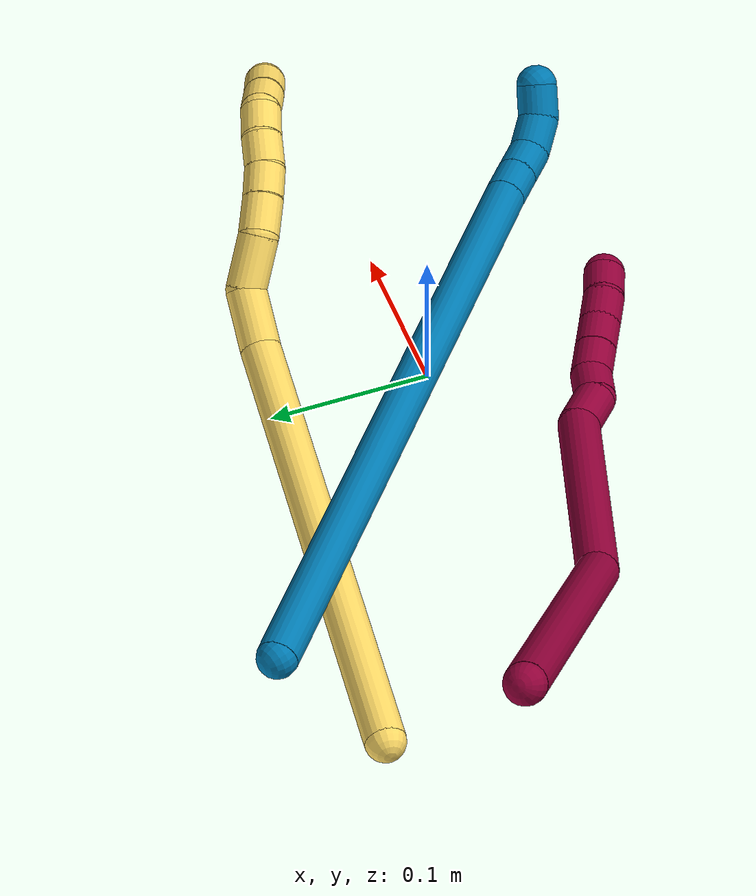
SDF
<sdf version="1.7">
 <world name="default">
  <model name="5">
   <static>0</static>
   <link name="5">
    <collision name="collision-cylinder-e_1_1_4">
     <pose>0.0027 0.001136 -0.150952 -3.13407 0.017885 -2.345</pose>
     <geometry><cylinder><radius>0.0125</radius><length>0.30196</length></cylinder></geometry>
     <surface>
      <friction><ode><mu>1.16</mu><mu2>1.16</mu2><slip1>0</slip1><slip2>0</slip2></ode></friction>
      <contact><ode><kp>1e+06</kp><kd>1</kd><max_vel>0</max_vel><min_depth>0.001</min_depth></ode></contact>
     </surface>
    </collision>
    <visual name="visual-cylinder-e_1_1_4">
     <pose>0.0027 0.001136 -0.150952 -3.13407 0.017885 -2.345</pose>
     <geometry><cylinder><radius>0.0125</radius><length>0.30196</length></cylinder></geometry>
     <material><ambient>1 0.858824 0.4 1</ambient></material>
    </visual>
    <collision name="collision-cylinder-e_2_4_5">
     <pose>0.010654 0.010143 -0.318204 -2.69177 0.282495 -1.1122</pose>
     <geometry><cylinder><radius>0.0125</radius><length>0.037698</length></cylinder></geometry>
     <surface>
      <friction><ode><mu>1.16</mu><mu2>1.16</mu2><slip1>0</slip1><slip2>0</slip2></ode></friction>
      <contact><ode><kp>1e+06</kp><kd>1</kd><max_vel>0</max_vel><min_depth>0.001</min_depth></ode></contact>
     </surface>
    </collision>
    <visual name="visual-cylinder-e_2_4_5">
     <pose>0.010654 0.010143 -0.318204 -2.69177 0.282495 -1.1122</pose>
     <geometry><cylinder><radius>0.0125</radius><length>0.037698</length></cylinder></geometry>
     <material><ambient>1 0.858824 0.4 1</ambient></material>
    </visual>
    <collision name="collision-cylinder-e_3_5_6">
     <pose>0.027768 0.022753 -0.345401 -2.73129 0.784464 -2.20948</pose>
     <geometry><cylinder><radius>0.0125</radius><length>0.033575</length></cylinder></geometry>
     <surface>
      <friction><ode><mu>1.16</mu><mu2>1.16</mu2><slip1>0</slip1><slip2>0</slip2></ode></friction>
      <contact><ode><kp>1e+06</kp><kd>1</kd><max_vel>0</max_vel><min_depth>0.001</min_depth></ode></contact>
     </surface>
    </collision>
    <visual name="visual-cylinder-e_3_5_6">
     <pose>0.027768 0.022753 -0.345401 -2.73129 0.784464 -2.20948</pose>
     <geometry><cylinder><radius>0.0125</radius><length>0.033575</length></cylinder></geometry>
     <material><ambient>1 0.858824 0.4 1</ambient></material>
    </visual>
    <collision name="collision-cylinder-e_4_6_7">
     <pose>0.045502 0.028598 -0.366805 -3.03676 0.507371 -2.74229</pose>
     <geometry><cylinder><radius>0.0125</radius><length>0.02418</length></cylinder></geometry>
     <surface>
      <friction><ode><mu>1.16</mu><mu2>1.16</mu2><slip1>0</slip1><slip2>0</slip2></ode></friction>
      <contact><ode><kp>1e+06</kp><kd>1</kd><max_vel>0</max_vel><min_depth>0.001</min_depth></ode></contact>
     </surface>
    </collision>
    <visual name="visual-cylinder-e_4_6_7">
     <pose>0.045502 0.028598 -0.366805 -3.03676 0.507371 -2.74229</pose>
     <geometry><cylinder><radius>0.0125</radius><length>0.02418</length></cylinder></geometry>
     <material><ambient>1 0.858824 0.4 1</ambient></material>
    </visual>
    <collision name="collision-cylinder-e_5_7_8">
     <pose>0.055632 0.030532 -0.386374 -3.05041 0.437567 -2.73685</pose>
     <geometry><cylinder><radius>0.0125</radius><length>0.020088</length></cylinder></geometry>
     <surface>
      <friction><ode><mu>1.16</mu><mu2>1.16</mu2><slip1>0</slip1><slip2>0</slip2></ode></friction>
      <contact><ode><kp>1e+06</kp><kd>1</kd><max_vel>0</max_vel><min_depth>0.001</min_depth></ode></contact>
     </surface>
    </collision>
    <visual name="visual-cylinder-e_5_7_8">
     <pose>0.055632 0.030532 -0.386374 -3.05041 0.437567 -2.73685</pose>
     <geometry><cylinder><radius>0.0125</radius><length>0.020088</length></cylinder></geometry>
     <material><ambient>1 0.858824 0.4 1</ambient></material>
    </visual>
    <collision name="collision-cylinder-e_6_8_9">
     <pose>0.062776 0.032728 -0.405404 -3.00528 0.279414 -2.23773</pose>
     <geometry><cylinder><radius>0.0125</radius><length>0.020939</length></cylinder></geometry>
     <surface>
      <friction><ode><mu>1.16</mu><mu2>1.16</mu2><slip1>0</slip1><slip2>0</slip2></ode></friction>
      <contact><ode><kp>1e+06</kp><kd>1</kd><max_vel>0</max_vel><min_depth>0.001</min_depth></ode></contact>
     </surface>
    </collision>
    <visual name="visual-cylinder-e_6_8_9">
     <pose>0.062776 0.032728 -0.405404 -3.00528 0.279414 -2.23773</pose>
     <geometry><cylinder><radius>0.0125</radius><length>0.020939</length></cylinder></geometry>
     <material><ambient>1 0.858824 0.4 1</ambient></material>
    </visual>
    <collision name="collision-cylinder-e_7_9_10">
     <pose>0.068234 0.03381 -0.425208 3.1125 0.255594 2.91613</pose>
     <geometry><cylinder><radius>0.0125</radius><length>0.020337</length></cylinder></geometry>
     <surface>
      <friction><ode><mu>1.16</mu><mu2>1.16</mu2><slip1>0</slip1><slip2>0</slip2></ode></friction>
      <contact><ode><kp>1e+06</kp><kd>1</kd><max_vel>0</max_vel><min_depth>0.001</min_depth></ode></contact>
     </surface>
    </collision>
    <visual name="visual-cylinder-e_7_9_10">
     <pose>0.068234 0.03381 -0.425208 3.1125 0.255594 2.91613</pose>
     <geometry><cylinder><radius>0.0125</radius><length>0.020337</length></cylinder></geometry>
     <material><ambient>1 0.858824 0.4 1</ambient></material>
    </visual>
    <collision name="collision-cylinder-e_8_10_11">
     <pose>0.07135 0.028796 -0.444165 2.66349 0.053074 0.21697</pose>
     <geometry><cylinder><radius>0.0125</radius><length>0.020579</length></cylinder></geometry>
     <surface>
      <friction><ode><mu>1.16</mu><mu2>1.16</mu2><slip1>0</slip1><slip2>0</slip2></ode></friction>
      <contact><ode><kp>1e+06</kp><kd>1</kd><max_vel>0</max_vel><min_depth>0.001</min_depth></ode></contact>
     </surface>
    </collision>
    <visual name="visual-cylinder-e_8_10_11">
     <pose>0.07135 0.028796 -0.444165 2.66349 0.053074 0.21697</pose>
     <geometry><cylinder><radius>0.0125</radius><length>0.020579</length></cylinder></geometry>
     <material><ambient>1 0.858824 0.4 1</ambient></material>
    </visual>
    <collision name="collision-cylinder-e_9_11_2">
     <pose>0.071501 0.019051 -0.4623 2.63355 -0.038289 -0.147226</pose>
     <geometry><cylinder><radius>0.0125</radius><length>0.020644</length></cylinder></geometry>
     <surface>
      <friction><ode><mu>1.16</mu><mu2>1.16</mu2><slip1>0</slip1><slip2>0</slip2></ode></friction>
      <contact><ode><kp>1e+06</kp><kd>1</kd><max_vel>0</max_vel><min_depth>0.001</min_depth></ode></contact>
     </surface>
    </collision>
    <visual name="visual-cylinder-e_9_11_2">
     <pose>0.071501 0.019051 -0.4623 2.63355 -0.038289 -0.147226</pose>
     <geometry><cylinder><radius>0.0125</radius><length>0.020644</length></cylinder></geometry>
     <material><ambient>1 0.858824 0.4 1</ambient></material>
    </visual>
    <collision name="collision-sphere-2">
     <pose>0.071106 0.014033 -0.471312 0 -0 0</pose>
     <geometry><sphere><radius>0.0125</radius></sphere></geometry>
     <surface>
      <friction><ode><mu>1.16</mu><mu2>1.16</mu2><slip1>0</slip1><slip2>0</slip2></ode></friction>
      <contact><ode><kp>1e+06</kp><kd>1</kd><max_vel>0</max_vel><min_depth>0.001</min_depth></ode></contact>
     </surface>
    </collision>
    <visual name="visual-sphere-2">
     <pose>0.071106 0.014033 -0.471312 0 -0 0</pose>
     <geometry><sphere><radius>0.0125</radius></sphere></geometry>
     <material><ambient>1 0.858824 0.4 1</ambient></material>
    </visual>
    <collision name="collision-sphere-11">
     <pose>0.071896 0.024068 -0.453288 0 -0 0</pose>
     <geometry><sphere><radius>0.0125</radius></sphere></geometry>
     <surface>
      <friction><ode><mu>1.16</mu><mu2>1.16</mu2><slip1>0</slip1><slip2>0</slip2></ode></friction>
      <contact><ode><kp>1e+06</kp><kd>1</kd><max_vel>0</max_vel><min_depth>0.001</min_depth></ode></contact>
     </surface>
    </collision>
    <visual name="visual-sphere-11">
     <pose>0.071896 0.024068 -0.453288 0 -0 0</pose>
     <geometry><sphere><radius>0.0125</radius></sphere></geometry>
     <material><ambient>1 0.858824 0.4 1</ambient></material>
    </visual>
    <collision name="collision-sphere-10">
     <pose>0.070804 0.033523 -0.435042 0 -0 0</pose>
     <geometry><sphere><radius>0.0125</radius></sphere></geometry>
     <surface>
      <friction><ode><mu>1.16</mu><mu2>1.16</mu2><slip1>0</slip1><slip2>0</slip2></ode></friction>
      <contact><ode><kp>1e+06</kp><kd>1</kd><max_vel>0</max_vel><min_depth>0.001</min_depth></ode></contact>
     </surface>
    </collision>
    <visual name="visual-sphere-10">
     <pose>0.070804 0.033523 -0.435042 0 -0 0</pose>
     <geometry><sphere><radius>0.0125</radius></sphere></geometry>
     <material><ambient>1 0.858824 0.4 1</ambient></material>
    </visual>
    <collision name="collision-sphere-9">
     <pose>0.065663 0.034096 -0.415374 0 -0 0</pose>
     <geometry><sphere><radius>0.0125</radius></sphere></geometry>
     <surface>
      <friction><ode><mu>1.16</mu><mu2>1.16</mu2><slip1>0</slip1><slip2>0</slip2></ode></friction>
      <contact><ode><kp>1e+06</kp><kd>1</kd><max_vel>0</max_vel><min_depth>0.001</min_depth></ode></contact>
     </surface>
    </collision>
    <visual name="visual-sphere-9">
     <pose>0.065663 0.034096 -0.415374 0 -0 0</pose>
     <geometry><sphere><radius>0.0125</radius></sphere></geometry>
     <material><ambient>1 0.858824 0.4 1</ambient></material>
    </visual>
    <collision name="collision-sphere-4">
     <pose>0.0054 0.002272 -0.301903 0 -0 0</pose>
     <geometry><sphere><radius>0.0125</radius></sphere></geometry>
     <surface>
      <friction><ode><mu>1.16</mu><mu2>1.16</mu2><slip1>0</slip1><slip2>0</slip2></ode></friction>
      <contact><ode><kp>1e+06</kp><kd>1</kd><max_vel>0</max_vel><min_depth>0.001</min_depth></ode></contact>
     </surface>
    </collision>
    <visual name="visual-sphere-4">
     <pose>0.0054 0.002272 -0.301903 0 -0 0</pose>
     <geometry><sphere><radius>0.0125</radius></sphere></geometry>
     <material><ambient>1 0.858824 0.4 1</ambient></material>
    </visual>
    <collision name="collision-sphere-1">
     <geometry><sphere><radius>0.0125</radius></sphere></geometry>
     <surface>
      <friction><ode><mu>1.16</mu><mu2>1.16</mu2><slip1>0</slip1><slip2>0</slip2></ode></friction>
      <contact><ode><kp>1e+06</kp><kd>1</kd><max_vel>0</max_vel><min_depth>0.001</min_depth></ode></contact>
     </surface>
    </collision>
    <visual name="visual-sphere-1">
     <geometry><sphere><radius>0.0125</radius></sphere></geometry>
     <material><ambient>1 0.858824 0.4 1</ambient></material>
    </visual>
    <collision name="collision-sphere-8">
     <pose>0.059888 0.031361 -0.395434 0 -0 0</pose>
     <geometry><sphere><radius>0.0125</radius></sphere></geometry>
     <surface>
      <friction><ode><mu>1.16</mu><mu2>1.16</mu2><slip1>0</slip1><slip2>0</slip2></ode></friction>
      <contact><ode><kp>1e+06</kp><kd>1</kd><max_vel>0</max_vel><min_depth>0.001</min_depth></ode></contact>
     </surface>
    </collision>
    <visual name="visual-sphere-8">
     <pose>0.059888 0.031361 -0.395434 0 -0 0</pose>
     <geometry><sphere><radius>0.0125</radius></sphere></geometry>
     <material><ambient>1 0.858824 0.4 1</ambient></material>
    </visual>
    <collision name="collision-sphere-5">
     <pose>0.015909 0.018014 -0.334505 0 -0 0</pose>
     <geometry><sphere><radius>0.0125</radius></sphere></geometry>
     <surface>
      <friction><ode><mu>1.16</mu><mu2>1.16</mu2><slip1>0</slip1><slip2>0</slip2></ode></friction>
      <contact><ode><kp>1e+06</kp><kd>1</kd><max_vel>0</max_vel><min_depth>0.001</min_depth></ode></contact>
     </surface>
    </collision>
    <visual name="visual-sphere-5">
     <pose>0.015909 0.018014 -0.334505 0 -0 0</pose>
     <geometry><sphere><radius>0.0125</radius></sphere></geometry>
     <material><ambient>1 0.858824 0.4 1</ambient></material>
    </visual>
    <collision name="collision-sphere-6">
     <pose>0.039627 0.027493 -0.356296 0 -0 0</pose>
     <geometry><sphere><radius>0.0125</radius></sphere></geometry>
     <surface>
      <friction><ode><mu>1.16</mu><mu2>1.16</mu2><slip1>0</slip1><slip2>0</slip2></ode></friction>
      <contact><ode><kp>1e+06</kp><kd>1</kd><max_vel>0</max_vel><min_depth>0.001</min_depth></ode></contact>
     </surface>
    </collision>
    <visual name="visual-sphere-6">
     <pose>0.039627 0.027493 -0.356296 0 -0 0</pose>
     <geometry><sphere><radius>0.0125</radius></sphere></geometry>
     <material><ambient>1 0.858824 0.4 1</ambient></material>
    </visual>
    <collision name="collision-sphere-7">
     <pose>0.051376 0.029704 -0.377314 0 -0 0</pose>
     <geometry><sphere><radius>0.0125</radius></sphere></geometry>
     <surface>
      <friction><ode><mu>1.16</mu><mu2>1.16</mu2><slip1>0</slip1><slip2>0</slip2></ode></friction>
      <contact><ode><kp>1e+06</kp><kd>1</kd><max_vel>0</max_vel><min_depth>0.001</min_depth></ode></contact>
     </surface>
    </collision>
    <visual name="visual-sphere-7">
     <pose>0.051376 0.029704 -0.377314 0 -0 0</pose>
     <geometry><sphere><radius>0.0125</radius></sphere></geometry>
     <material><ambient>1 0.858824 0.4 1</ambient></material>
    </visual>
    <inertial>
     <pose>0.020027 0.010306 -0.24325 0 -0 0</pose>
     <mass>0.5</mass>
     <inertia>
      <ixx>-0.003266</ixx>
      <ixy>0</ixy>
      <ixz>0</ixz>
      <iyy>-4e-05</iyy>
      <iyz>0</iyz>
      <izz>-0.000105</izz>
     </inertia>
    </inertial>
   </link>
   <pose>-0.264649 0.122049 0.012442 1.59107 -0.627749 -1.66665</pose>
  </model>
  <model name="8">
   <static>0</static>
   <link name="8">
    <collision name="collision-cylinder-e_1_1_4">
     <pose>0.022105 -0.000349 -0.108624 3.13838 0.200755 3.10973</pose>
     <geometry><cylinder><radius>0.0125</radius><length>0.221702</length></cylinder></geometry>
     <surface>
      <friction><ode><mu>1.16</mu><mu2>1.16</mu2><slip1>0</slip1><slip2>0</slip2></ode></friction>
      <contact><ode><kp>1e+06</kp><kd>1</kd><max_vel>0</max_vel><min_depth>0.001</min_depth></ode></contact>
     </surface>
    </collision>
    <visual name="visual-cylinder-e_1_1_4">
     <pose>0.022105 -0.000349 -0.108624 3.13838 0.200755 3.10973</pose>
     <geometry><cylinder><radius>0.0125</radius><length>0.221702</length></cylinder></geometry>
     <material><ambient>0.584314 0 0.227451 1</ambient></material>
    </visual>
    <collision name="collision-cylinder-e_2_4_5">
     <pose>0.087657 -0.00302 -0.279063 3.10403 0.612318 3.02289</pose>
     <geometry><cylinder><radius>0.0125</radius><length>0.151183</length></cylinder></geometry>
     <surface>
      <friction><ode><mu>1.16</mu><mu2>1.16</mu2><slip1>0</slip1><slip2>0</slip2></ode></friction>
      <contact><ode><kp>1e+06</kp><kd>1</kd><max_vel>0</max_vel><min_depth>0.001</min_depth></ode></contact>
     </surface>
    </collision>
    <visual name="visual-cylinder-e_2_4_5">
     <pose>0.087657 -0.00302 -0.279063 3.10403 0.612318 3.02289</pose>
     <geometry><cylinder><radius>0.0125</radius><length>0.151183</length></cylinder></geometry>
     <material><ambient>0.584314 0 0.227451 1</ambient></material>
    </visual>
    <collision name="collision-cylinder-e_3_5_6">
     <pose>0.135718 -0.010979 -0.35204 2.67404 0.353446 1.28694</pose>
     <geometry><cylinder><radius>0.0125</radius><length>0.026659</length></cylinder></geometry>
     <surface>
      <friction><ode><mu>1.16</mu><mu2>1.16</mu2><slip1>0</slip1><slip2>0</slip2></ode></friction>
      <contact><ode><kp>1e+06</kp><kd>1</kd><max_vel>0</max_vel><min_depth>0.001</min_depth></ode></contact>
     </surface>
    </collision>
    <visual name="visual-cylinder-e_3_5_6">
     <pose>0.135718 -0.010979 -0.35204 2.67404 0.353446 1.28694</pose>
     <geometry><cylinder><radius>0.0125</radius><length>0.026659</length></cylinder></geometry>
     <material><ambient>0.584314 0 0.227451 1</ambient></material>
    </visual>
    <collision name="collision-cylinder-e_4_6_7">
     <pose>0.147223 -0.017546 -0.37053 3.01526 0.750793 2.82331</pose>
     <geometry><cylinder><radius>0.0125</radius><length>0.020202</length></cylinder></geometry>
     <surface>
      <friction><ode><mu>1.16</mu><mu2>1.16</mu2><slip1>0</slip1><slip2>0</slip2></ode></friction>
      <contact><ode><kp>1e+06</kp><kd>1</kd><max_vel>0</max_vel><min_depth>0.001</min_depth></ode></contact>
     </surface>
    </collision>
    <visual name="visual-cylinder-e_4_6_7">
     <pose>0.147223 -0.017546 -0.37053 3.01526 0.750793 2.82331</pose>
     <geometry><cylinder><radius>0.0125</radius><length>0.020202</length></cylinder></geometry>
     <material><ambient>0.584314 0 0.227451 1</ambient></material>
    </visual>
    <collision name="collision-cylinder-e_5_7_8">
     <pose>0.160392 -0.022324 -0.384801 2.63567 0.669124 1.8628</pose>
     <geometry><cylinder><radius>0.0125</radius><length>0.020242</length></cylinder></geometry>
     <surface>
      <friction><ode><mu>1.16</mu><mu2>1.16</mu2><slip1>0</slip1><slip2>0</slip2></ode></friction>
      <contact><ode><kp>1e+06</kp><kd>1</kd><max_vel>0</max_vel><min_depth>0.001</min_depth></ode></contact>
     </surface>
    </collision>
    <visual name="visual-cylinder-e_5_7_8">
     <pose>0.160392 -0.022324 -0.384801 2.63567 0.669124 1.8628</pose>
     <geometry><cylinder><radius>0.0125</radius><length>0.020242</length></cylinder></geometry>
     <material><ambient>0.584314 0 0.227451 1</ambient></material>
    </visual>
    <collision name="collision-cylinder-e_6_8_9">
     <pose>0.172718 -0.029783 -0.398848 2.67116 0.649184 1.90386</pose>
     <geometry><cylinder><radius>0.0125</radius><length>0.020009</length></cylinder></geometry>
     <surface>
      <friction><ode><mu>1.16</mu><mu2>1.16</mu2><slip1>0</slip1><slip2>0</slip2></ode></friction>
      <contact><ode><kp>1e+06</kp><kd>1</kd><max_vel>0</max_vel><min_depth>0.001</min_depth></ode></contact>
     </surface>
    </collision>
    <visual name="visual-cylinder-e_6_8_9">
     <pose>0.172718 -0.029783 -0.398848 2.67116 0.649184 1.90386</pose>
     <geometry><cylinder><radius>0.0125</radius><length>0.020009</length></cylinder></geometry>
     <material><ambient>0.584314 0 0.227451 1</ambient></material>
    </visual>
    <collision name="collision-cylinder-e_7_9_10">
     <pose>0.185186 -0.037529 -0.41241 2.5722 0.69702 1.78551</pose>
     <geometry><cylinder><radius>0.0125</radius><length>0.020001</length></cylinder></geometry>
     <surface>
      <friction><ode><mu>1.16</mu><mu2>1.16</mu2><slip1>0</slip1><slip2>0</slip2></ode></friction>
      <contact><ode><kp>1e+06</kp><kd>1</kd><max_vel>0</max_vel><min_depth>0.001</min_depth></ode></contact>
     </surface>
    </collision>
    <visual name="visual-cylinder-e_7_9_10">
     <pose>0.185186 -0.037529 -0.41241 2.5722 0.69702 1.78551</pose>
     <geometry><cylinder><radius>0.0125</radius><length>0.020001</length></cylinder></geometry>
     <material><ambient>0.584314 0 0.227451 1</ambient></material>
    </visual>
    <collision name="collision-cylinder-e_8_10_2">
     <pose>0.197998 -0.043962 -0.426208 2.83815 0.693438 2.34096</pose>
     <geometry><cylinder><radius>0.0125</radius><length>0.020002</length></cylinder></geometry>
     <surface>
      <friction><ode><mu>1.16</mu><mu2>1.16</mu2><slip1>0</slip1><slip2>0</slip2></ode></friction>
      <contact><ode><kp>1e+06</kp><kd>1</kd><max_vel>0</max_vel><min_depth>0.001</min_depth></ode></contact>
     </surface>
    </collision>
    <visual name="visual-cylinder-e_8_10_2">
     <pose>0.197998 -0.043962 -0.426208 2.83815 0.693438 2.34096</pose>
     <geometry><cylinder><radius>0.0125</radius><length>0.020002</length></cylinder></geometry>
     <material><ambient>0.584314 0 0.227451 1</ambient></material>
    </visual>
    <collision name="collision-sphere-2">
     <pose>0.204391 -0.04626 -0.433548 0 -0 0</pose>
     <geometry><sphere><radius>0.0125</radius></sphere></geometry>
     <surface>
      <friction><ode><mu>1.16</mu><mu2>1.16</mu2><slip1>0</slip1><slip2>0</slip2></ode></friction>
      <contact><ode><kp>1e+06</kp><kd>1</kd><max_vel>0</max_vel><min_depth>0.001</min_depth></ode></contact>
     </surface>
    </collision>
    <visual name="visual-sphere-2">
     <pose>0.204391 -0.04626 -0.433548 0 -0 0</pose>
     <geometry><sphere><radius>0.0125</radius></sphere></geometry>
     <material><ambient>0.584314 0 0.227451 1</ambient></material>
    </visual>
    <collision name="collision-sphere-10">
     <pose>0.191606 -0.041664 -0.418869 0 -0 0</pose>
     <geometry><sphere><radius>0.0125</radius></sphere></geometry>
     <surface>
      <friction><ode><mu>1.16</mu><mu2>1.16</mu2><slip1>0</slip1><slip2>0</slip2></ode></friction>
      <contact><ode><kp>1e+06</kp><kd>1</kd><max_vel>0</max_vel><min_depth>0.001</min_depth></ode></contact>
     </surface>
    </collision>
    <visual name="visual-sphere-10">
     <pose>0.191606 -0.041664 -0.418869 0 -0 0</pose>
     <geometry><sphere><radius>0.0125</radius></sphere></geometry>
     <material><ambient>0.584314 0 0.227451 1</ambient></material>
    </visual>
    <collision name="collision-sphere-9">
     <pose>0.178766 -0.033395 -0.405952 0 -0 0</pose>
     <geometry><sphere><radius>0.0125</radius></sphere></geometry>
     <surface>
      <friction><ode><mu>1.16</mu><mu2>1.16</mu2><slip1>0</slip1><slip2>0</slip2></ode></friction>
      <contact><ode><kp>1e+06</kp><kd>1</kd><max_vel>0</max_vel><min_depth>0.001</min_depth></ode></contact>
     </surface>
    </collision>
    <visual name="visual-sphere-9">
     <pose>0.178766 -0.033395 -0.405952 0 -0 0</pose>
     <geometry><sphere><radius>0.0125</radius></sphere></geometry>
     <material><ambient>0.584314 0 0.227451 1</ambient></material>
    </visual>
    <collision name="collision-sphere-4">
     <pose>0.04421 -0.000697 -0.217248 0 -0 0</pose>
     <geometry><sphere><radius>0.0125</radius></sphere></geometry>
     <surface>
      <friction><ode><mu>1.16</mu><mu2>1.16</mu2><slip1>0</slip1><slip2>0</slip2></ode></friction>
      <contact><ode><kp>1e+06</kp><kd>1</kd><max_vel>0</max_vel><min_depth>0.001</min_depth></ode></contact>
     </surface>
    </collision>
    <visual name="visual-sphere-4">
     <pose>0.04421 -0.000697 -0.217248 0 -0 0</pose>
     <geometry><sphere><radius>0.0125</radius></sphere></geometry>
     <material><ambient>0.584314 0 0.227451 1</ambient></material>
    </visual>
    <collision name="collision-sphere-1">
     <geometry><sphere><radius>0.0125</radius></sphere></geometry>
     <surface>
      <friction><ode><mu>1.16</mu><mu2>1.16</mu2><slip1>0</slip1><slip2>0</slip2></ode></friction>
      <contact><ode><kp>1e+06</kp><kd>1</kd><max_vel>0</max_vel><min_depth>0.001</min_depth></ode></contact>
     </surface>
    </collision>
    <visual name="visual-sphere-1">
     <geometry><sphere><radius>0.0125</radius></sphere></geometry>
     <material><ambient>0.584314 0 0.227451 1</ambient></material>
    </visual>
    <collision name="collision-sphere-8">
     <pose>0.16667 -0.026171 -0.391745 0 -0 0</pose>
     <geometry><sphere><radius>0.0125</radius></sphere></geometry>
     <surface>
      <friction><ode><mu>1.16</mu><mu2>1.16</mu2><slip1>0</slip1><slip2>0</slip2></ode></friction>
      <contact><ode><kp>1e+06</kp><kd>1</kd><max_vel>0</max_vel><min_depth>0.001</min_depth></ode></contact>
     </surface>
    </collision>
    <visual name="visual-sphere-8">
     <pose>0.16667 -0.026171 -0.391745 0 -0 0</pose>
     <geometry><sphere><radius>0.0125</radius></sphere></geometry>
     <material><ambient>0.584314 0 0.227451 1</ambient></material>
    </visual>
    <collision name="collision-sphere-5">
     <pose>0.131104 -0.005343 -0.340877 0 -0 0</pose>
     <geometry><sphere><radius>0.0125</radius></sphere></geometry>
     <surface>
      <friction><ode><mu>1.16</mu><mu2>1.16</mu2><slip1>0</slip1><slip2>0</slip2></ode></friction>
      <contact><ode><kp>1e+06</kp><kd>1</kd><max_vel>0</max_vel><min_depth>0.001</min_depth></ode></contact>
     </surface>
    </collision>
    <visual name="visual-sphere-5">
     <pose>0.131104 -0.005343 -0.340877 0 -0 0</pose>
     <geometry><sphere><radius>0.0125</radius></sphere></geometry>
     <material><ambient>0.584314 0 0.227451 1</ambient></material>
    </visual>
    <collision name="collision-sphere-6">
     <pose>0.140332 -0.016616 -0.363204 0 -0 0</pose>
     <geometry><sphere><radius>0.0125</radius></sphere></geometry>
     <surface>
      <friction><ode><mu>1.16</mu><mu2>1.16</mu2><slip1>0</slip1><slip2>0</slip2></ode></friction>
      <contact><ode><kp>1e+06</kp><kd>1</kd><max_vel>0</max_vel><min_depth>0.001</min_depth></ode></contact>
     </surface>
    </collision>
    <visual name="visual-sphere-6">
     <pose>0.140332 -0.016616 -0.363204 0 -0 0</pose>
     <geometry><sphere><radius>0.0125</radius></sphere></geometry>
     <material><ambient>0.584314 0 0.227451 1</ambient></material>
    </visual>
    <collision name="collision-sphere-7">
     <pose>0.154114 -0.018477 -0.377857 0 -0 0</pose>
     <geometry><sphere><radius>0.0125</radius></sphere></geometry>
     <surface>
      <friction><ode><mu>1.16</mu><mu2>1.16</mu2><slip1>0</slip1><slip2>0</slip2></ode></friction>
      <contact><ode><kp>1e+06</kp><kd>1</kd><max_vel>0</max_vel><min_depth>0.001</min_depth></ode></contact>
     </surface>
    </collision>
    <visual name="visual-sphere-7">
     <pose>0.154114 -0.018477 -0.377857 0 -0 0</pose>
     <geometry><sphere><radius>0.0125</radius></sphere></geometry>
     <material><ambient>0.584314 0 0.227451 1</ambient></material>
    </visual>
    <inertial>
     <pose>0.078224 -0.007718 -0.231371 0 -0 0</pose>
     <mass>0.5</mass>
     <inertia>
      <ixx>-0.001059</ixx>
      <ixy>0</ixy>
      <ixz>0</ixz>
      <iyy>0.001274</iyy>
      <iyz>0</iyz>
      <izz>-0.000376</izz>
     </inertia>
    </inertial>
   </link>
   <pose>-0.407004 0.093233 0.221244 -0.762766 -0.444541 0.356821</pose>
  </model>
  <model name="9">
   <static>0</static>
   <link name="9">
    <collision name="collision-cylinder-e_1_1_4">
     <pose>0.092003 -0.054411 0.17722 0.29789 0.460666 0.070346</pose>
     <geometry><cylinder><radius>0.0125</radius><length>0.413918</length></cylinder></geometry>
     <surface>
      <friction><ode><mu>1.16</mu><mu2>1.16</mu2><slip1>0</slip1><slip2>0</slip2></ode></friction>
      <contact><ode><kp>1e+06</kp><kd>1</kd><max_vel>0</max_vel><min_depth>0.001</min_depth></ode></contact>
     </surface>
    </collision>
    <visual name="visual-cylinder-e_1_1_4">
     <pose>0.092003 -0.054411 0.17722 0.29789 0.460666 0.070346</pose>
     <geometry><cylinder><radius>0.0125</radius><length>0.413918</length></cylinder></geometry>
     <material><ambient>0 0.490196 0.709804 1</ambient></material>
    </visual>
    <collision name="collision-cylinder-e_2_4_5">
     <pose>0.188409 -0.11129 0.363665 0.261379 0.43216 0.057687</pose>
     <geometry><cylinder><radius>0.0125</radius><length>0.021031</length></cylinder></geometry>
     <surface>
      <friction><ode><mu>1.16</mu><mu2>1.16</mu2><slip1>0</slip1><slip2>0</slip2></ode></friction>
      <contact><ode><kp>1e+06</kp><kd>1</kd><max_vel>0</max_vel><min_depth>0.001</min_depth></ode></contact>
     </surface>
    </collision>
    <visual name="visual-cylinder-e_2_4_5">
     <pose>0.188409 -0.11129 0.363665 0.261379 0.43216 0.057687</pose>
     <geometry><cylinder><radius>0.0125</radius><length>0.021031</length></cylinder></geometry>
     <material><ambient>0 0.490196 0.709804 1</ambient></material>
    </visual>
    <collision name="collision-cylinder-e_3_5_6">
     <pose>0.197206 -0.115908 0.382293 0.224798 0.427307 0.04897</pose>
     <geometry><cylinder><radius>0.0125</radius><length>0.021199</length></cylinder></geometry>
     <surface>
      <friction><ode><mu>1.16</mu><mu2>1.16</mu2><slip1>0</slip1><slip2>0</slip2></ode></friction>
      <contact><ode><kp>1e+06</kp><kd>1</kd><max_vel>0</max_vel><min_depth>0.001</min_depth></ode></contact>
     </surface>
    </collision>
    <visual name="visual-cylinder-e_3_5_6">
     <pose>0.197206 -0.115908 0.382293 0.224798 0.427307 0.04897</pose>
     <geometry><cylinder><radius>0.0125</radius><length>0.021199</length></cylinder></geometry>
     <material><ambient>0 0.490196 0.709804 1</ambient></material>
    </visual>
    <collision name="collision-cylinder-e_4_6_7">
     <pose>0.208578 -0.116314 0.400852 -0.188286 0.642755 -0.062849</pose>
     <geometry><cylinder><radius>0.0125</radius><length>0.023287</length></cylinder></geometry>
     <surface>
      <friction><ode><mu>1.16</mu><mu2>1.16</mu2><slip1>0</slip1><slip2>0</slip2></ode></friction>
      <contact><ode><kp>1e+06</kp><kd>1</kd><max_vel>0</max_vel><min_depth>0.001</min_depth></ode></contact>
     </surface>
    </collision>
    <visual name="visual-cylinder-e_4_6_7">
     <pose>0.208578 -0.116314 0.400852 -0.188286 0.642755 -0.062849</pose>
     <geometry><cylinder><radius>0.0125</radius><length>0.023287</length></cylinder></geometry>
     <material><ambient>0 0.490196 0.709804 1</ambient></material>
    </visual>
    <collision name="collision-cylinder-e_5_7_2">
     <pose>0.223527 -0.109975 0.414601 -0.78546 0.886924 -0.388587</pose>
     <geometry><cylinder><radius>0.0125</radius><length>0.020565</length></cylinder></geometry>
     <surface>
      <friction><ode><mu>1.16</mu><mu2>1.16</mu2><slip1>0</slip1><slip2>0</slip2></ode></friction>
      <contact><ode><kp>1e+06</kp><kd>1</kd><max_vel>0</max_vel><min_depth>0.001</min_depth></ode></contact>
     </surface>
    </collision>
    <visual name="visual-cylinder-e_5_7_2">
     <pose>0.223527 -0.109975 0.414601 -0.78546 0.886924 -0.388587</pose>
     <geometry><cylinder><radius>0.0125</radius><length>0.020565</length></cylinder></geometry>
     <material><ambient>0 0.490196 0.709804 1</ambient></material>
    </visual>
    <collision name="collision-sphere-2">
     <pose>0.231498 -0.105381 0.419194 0 -0 0</pose>
     <geometry><sphere><radius>0.0125</radius></sphere></geometry>
     <surface>
      <friction><ode><mu>1.16</mu><mu2>1.16</mu2><slip1>0</slip1><slip2>0</slip2></ode></friction>
      <contact><ode><kp>1e+06</kp><kd>1</kd><max_vel>0</max_vel><min_depth>0.001</min_depth></ode></contact>
     </surface>
    </collision>
    <visual name="visual-sphere-2">
     <pose>0.231498 -0.105381 0.419194 0 -0 0</pose>
     <geometry><sphere><radius>0.0125</radius></sphere></geometry>
     <material><ambient>0 0.490196 0.709804 1</ambient></material>
    </visual>
    <collision name="collision-sphere-7">
     <pose>0.215557 -0.114569 0.410007 0 -0 0</pose>
     <geometry><sphere><radius>0.0125</radius></sphere></geometry>
     <surface>
      <friction><ode><mu>1.16</mu><mu2>1.16</mu2><slip1>0</slip1><slip2>0</slip2></ode></friction>
      <contact><ode><kp>1e+06</kp><kd>1</kd><max_vel>0</max_vel><min_depth>0.001</min_depth></ode></contact>
     </surface>
    </collision>
    <visual name="visual-sphere-7">
     <pose>0.215557 -0.114569 0.410007 0 -0 0</pose>
     <geometry><sphere><radius>0.0125</radius></sphere></geometry>
     <material><ambient>0 0.490196 0.709804 1</ambient></material>
    </visual>
    <collision name="collision-sphere-6">
     <pose>0.201599 -0.118058 0.391697 0 -0 0</pose>
     <geometry><sphere><radius>0.0125</radius></sphere></geometry>
     <surface>
      <friction><ode><mu>1.16</mu><mu2>1.16</mu2><slip1>0</slip1><slip2>0</slip2></ode></friction>
      <contact><ode><kp>1e+06</kp><kd>1</kd><max_vel>0</max_vel><min_depth>0.001</min_depth></ode></contact>
     </surface>
    </collision>
    <visual name="visual-sphere-6">
     <pose>0.201599 -0.118058 0.391697 0 -0 0</pose>
     <geometry><sphere><radius>0.0125</radius></sphere></geometry>
     <material><ambient>0 0.490196 0.709804 1</ambient></material>
    </visual>
    <collision name="collision-sphere-5">
     <pose>0.192814 -0.113757 0.37289 0 -0 0</pose>
     <geometry><sphere><radius>0.0125</radius></sphere></geometry>
     <surface>
      <friction><ode><mu>1.16</mu><mu2>1.16</mu2><slip1>0</slip1><slip2>0</slip2></ode></friction>
      <contact><ode><kp>1e+06</kp><kd>1</kd><max_vel>0</max_vel><min_depth>0.001</min_depth></ode></contact>
     </surface>
    </collision>
    <visual name="visual-sphere-5">
     <pose>0.192814 -0.113757 0.37289 0 -0 0</pose>
     <geometry><sphere><radius>0.0125</radius></sphere></geometry>
     <material><ambient>0 0.490196 0.709804 1</ambient></material>
    </visual>
    <collision name="collision-sphere-1">
     <geometry><sphere><radius>0.0125</radius></sphere></geometry>
     <surface>
      <friction><ode><mu>1.16</mu><mu2>1.16</mu2><slip1>0</slip1><slip2>0</slip2></ode></friction>
      <contact><ode><kp>1e+06</kp><kd>1</kd><max_vel>0</max_vel><min_depth>0.001</min_depth></ode></contact>
     </surface>
    </collision>
    <visual name="visual-sphere-1">
     <geometry><sphere><radius>0.0125</radius></sphere></geometry>
     <material><ambient>0 0.490196 0.709804 1</ambient></material>
    </visual>
    <collision name="collision-sphere-4">
     <pose>0.184005 -0.108822 0.354441 0 -0 0</pose>
     <geometry><sphere><radius>0.0125</radius></sphere></geometry>
     <surface>
      <friction><ode><mu>1.16</mu><mu2>1.16</mu2><slip1>0</slip1><slip2>0</slip2></ode></friction>
      <contact><ode><kp>1e+06</kp><kd>1</kd><max_vel>0</max_vel><min_depth>0.001</min_depth></ode></contact>
     </surface>
    </collision>
    <visual name="visual-sphere-4">
     <pose>0.184005 -0.108822 0.354441 0 -0 0</pose>
     <geometry><sphere><radius>0.0125</radius></sphere></geometry>
     <material><ambient>0 0.490196 0.709804 1</ambient></material>
    </visual>
    <inertial>
     <pose>0.111357 -0.064579 0.213936 0 -0 0</pose>
     <mass>0.5</mass>
     <inertia>
      <ixx>0.005691</ixx>
      <ixy>0</ixy>
      <ixz>0</ixz>
      <iyy>0.006076</iyy>
      <iyz>0</iyz>
      <izz>-0.001048</izz>
     </inertia>
    </inertial>
   </link>
   <pose>-0.227603 0.173881 0.067721 1.53761 -0.327029 0.371358</pose>
  </model>
 </world>
</sdf>
